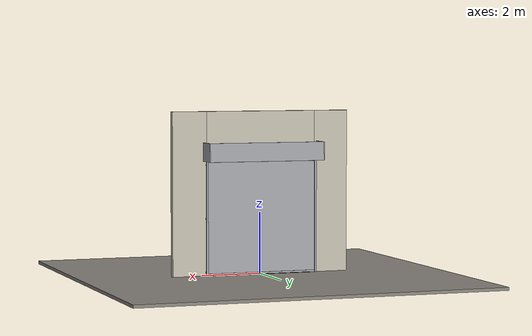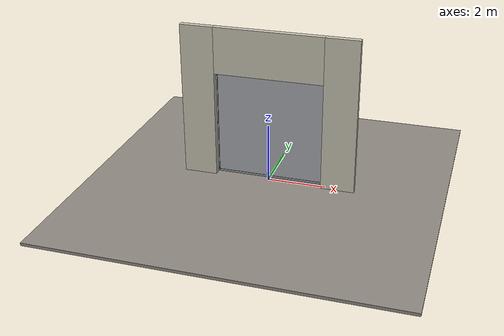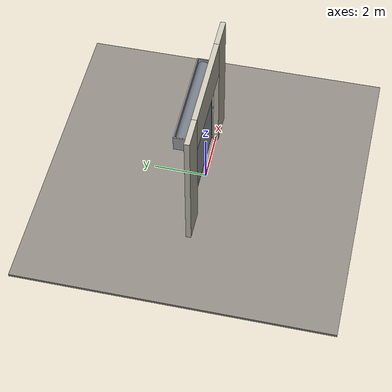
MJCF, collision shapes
<?xml version="1.0" ?>
<mujoco model="db0888_rollup_simple">
  <compiler angle="radian" meshdir="../../hardware" texturedir="../../textures" autolimits="true" inertiafromgeom="false"/>
  <option timestep="0.002" integrator="implicitfast" cone="elliptic" impratio="10" noslip_iterations="3">
    <flag multiccd="enable"/>
  </option>
  <size memory="16M"/>
  <default>
    <geom condim="4" solref="0.005 1" solimp="0.95 0.99 0.001"/>
    <joint solreflimit="0.005 1" solimplimit="0.95 0.99 0.001"/>
    <tendon solreflimit="0.005 1"/>
    <equality solref="0.002 1"/>
  </default>
  <visual>
    <headlight ambient="0.4 0.4 0.4" diffuse="0.7 0.7 0.7" specular="0.2 0.2 0.2"/>
    <quality shadowsize="4096"/>
    <map znear="0.01" zfar="60"/>
  </visual>
  <asset>
    <mesh name="pull_bdc5e965ab" file="pull_bdc5e965ab.obj"/>
    <material name="mat_floor" rgba="0.55 0.53 0.5 1" specular="0.2" shininess="0.15" reflectance="0"/>
    <material name="mat_wall" rgba="0.78 0.76 0.7 1" specular="0.2" shininess="0.1" reflectance="0"/>
    <material name="mat_frame" rgba="0.45 0.48 0.52 1" specular="0.32" shininess="0.6" reflectance="0.08"/>
    <material name="mat_track" rgba="0.65 0.66 0.68 1" specular="0.74" shininess="0.5" reflectance="0.36"/>
    <material name="mat_curtain" rgba="0.65 0.66 0.68 1" specular="0.74" shininess="0.5" reflectance="0.36"/>
    <material name="mat_slat_line" rgba="0.25 0.25 0.25 1" specular="0.2" shininess="0.3" reflectance="0"/>
    <material name="mat_astragal" rgba="0.09 0.09 0.1 1" specular="0.2" shininess="0.1" reflectance="0"/>
    <material name="mat_chain" rgba="0.55 0.56 0.58 1" specular="0.8" shininess="0.55" reflectance="0.4"/>
    <material name="mat_op_black_matte_metal" rgba="0.05 0.05 0.05 1" specular="0.38" shininess="0.3" reflectance="0.12"/>
    <texture name="skybox" type="skybox" builtin="gradient" rgb1="0.6 0.7 0.85" rgb2="0.9 0.92 0.95" width="256" height="256"/>
  </asset>
  <worldbody>
    <light name="sun" pos="1.5 -2.5 4" dir="-0.3 0.5 -0.8" directional="true" diffuse="0.8 0.8 0.8" specular="0.3 0.3 0.3" castshadow="true"/>
    <light name="fill" pos="-1.5 2.5 3" dir="0.3 -0.5 -0.7" directional="true" diffuse="0.35 0.35 0.4" castshadow="false"/>
    <camera name="robot_view" pos="0 -4.103125 3.003875" xyaxes="1 0 0 0 0.26963 0.962964" fovy="52"/>
    <camera name="far_view" pos="0 4.103125 3.003875" xyaxes="-1 0 0 0 -0.26963 0.962964" fovy="52"/>
    <camera name="iso" pos="3.118375 -3.446625 3.660375" xyaxes="0.741536 0.670913 0 -0.242917 0.268487 0.932151" fovy="46"/>
    <camera name="detail_handle" pos="0.25 -0.9665 0.51" xyaxes="0.975133 0.221621 0 -0.065674 0.288965 0.955084" fovy="38"/>
    <geom name="floor" type="box" size="6 6 0.05" pos="0 0 -0.05" material="mat_floor" group="0" contype="1" conaffinity="1" friction="0.8 0.005 0.0001" density="2400"/>
    <geom name="wall_left" type="box" size="0.5725 0.1 2.655" pos="-2.4275 0 2.655" material="mat_wall" group="0" contype="1" conaffinity="1" friction="0.6 0.005 0.0001" density="800"/>
    <geom name="wall_right" type="box" size="0.5725 0.1 2.655" pos="2.4275 0 2.655" material="mat_wall" group="0" contype="1" conaffinity="1" friction="0.6 0.005 0.0001" density="800"/>
    <geom name="wall_header" type="box" size="1.855 0.1 0.8" pos="0 0 4.51" material="mat_wall" group="0" contype="1" conaffinity="1" friction="0.6 0.005 0.0001" density="800"/>
    <geom name="guide_l" type="box" size="0.03 0.025 1.855" pos="-1.865 0.185 1.855" material="mat_track" group="0" contype="1" conaffinity="1" friction="0.6 0.005 0.0001" density="7850"/>
    <geom name="guide_r" type="box" size="0.03 0.025 1.855" pos="1.865 0.185 1.855" material="mat_track" group="0" contype="1" conaffinity="1" friction="0.6 0.005 0.0001" density="7850"/>
    <geom name="guide_bracket_l_0" type="box" size="0.028 0.034 0.02" pos="-1.865 0.13 0.12" material="mat_track" group="1" contype="0" conaffinity="0" density="7850"/>
    <geom name="guide_bracket_l_1" type="box" size="0.028 0.034 0.02" pos="-1.865 0.13 1.855" material="mat_track" group="1" contype="0" conaffinity="0" density="7850"/>
    <geom name="guide_bracket_l_2" type="box" size="0.028 0.034 0.02" pos="-1.865 0.13 3.59" material="mat_track" group="1" contype="0" conaffinity="0" density="7850"/>
    <geom name="guide_bracket_r_0" type="box" size="0.028 0.034 0.02" pos="1.865 0.13 0.12" material="mat_track" group="1" contype="0" conaffinity="0" density="7850"/>
    <geom name="guide_bracket_r_1" type="box" size="0.028 0.034 0.02" pos="1.865 0.13 1.855" material="mat_track" group="1" contype="0" conaffinity="0" density="7850"/>
    <geom name="guide_bracket_r_2" type="box" size="0.028 0.034 0.02" pos="1.865 0.13 3.59" material="mat_track" group="1" contype="0" conaffinity="0" density="7850"/>
    <geom name="coil_drum" type="cylinder" size="0.25 1.88" pos="0 0.463 4.01" quat="0.707107 0 0.707107 0" material="mat_frame" group="1" contype="0" conaffinity="0" density="300"/>
    <geom name="coil_shaft" type="cylinder" size="0.022 1.96" pos="0 0.463 4.01" quat="0.707107 0 0.707107 0" material="mat_track" group="1" contype="0" conaffinity="0" density="7850"/>
    <geom name="hood_front" type="box" size="1.95 0.02 0.3" pos="0 0.725 4.01" material="mat_track" group="1" contype="0" conaffinity="0" density="7850"/>
    <geom name="hood_end_l" type="box" size="0.02 0.3225 0.3" pos="-1.95 0.4225 4.01" material="mat_track" group="1" contype="0" conaffinity="0" density="7850"/>
    <geom name="hood_end_r" type="box" size="0.02 0.3225 0.3" pos="1.95 0.4225 4.01" material="mat_track" group="1" contype="0" conaffinity="0" density="7850"/>
    <site name="approach_point" pos="0 -2 0" quat="1 0 0 0" size="0.05" rgba="0.2 0.9 0.2 0.5" group="4"/>
    <site name="goal_point" pos="0 2 0" quat="1 0 0 0" size="0.05" rgba="0.2 0.9 0.2 0.5" group="4"/>
    <site name="door_plane_center" pos="0 0 1.855" quat="1 0 0 0" size="0.02" rgba="0.2 0.9 0.2 0.5" group="4"/>
    <body name="curtain" pos="0 0 0">
      <inertial pos="0 0.184778 1.606059" mass="84.624368" quat="0.50006 0.49994 0.49994 -0.50006" diaginertia="93.977869231 113.109844049 207.083999212"/>
      <joint name="curtain_slide" type="slide" axis="0 0 1" limited="true" range="0 3.61" damping="6.231218" frictionloss="132.781049" stiffness="62.089907" springref="12.033333" armature="0.5"/>
      <geom name="curtain_slab" type="box" size="1.83 0.0015 1.83" pos="0 0.185 1.84" material="mat_curtain" group="0" contype="1" conaffinity="1" friction="0.42 0.005 0.0001" density="1"/>
      <geom name="bottom_bar" type="box" size="1.83 0.0165 0.03" pos="0 0.185 0.042" material="mat_track" group="0" contype="1" conaffinity="1" friction="0.6 0.005 0.0001" density="7850"/>
      <geom name="bottom_astragal" type="box" size="1.83 0.0115 0.006" pos="0 0.185 0.006" material="mat_astragal" group="0" contype="1" conaffinity="1" friction="0.6 0.005 0.0001" density="1100"/>
      <geom name="lift_handle_n" type="mesh" mesh="pull_bdc5e965ab" pos="0 0.1835 0.16" quat="0.707107 0.707107 0 0" material="mat_op_black_matte_metal" group="1" contype="0" conaffinity="0" density="3000"/>
      <geom name="lift_handle_col_n" type="box" size="0.1 0.006 0.015" pos="0 0.1335 0.16" material="mat_op_black_matte_metal" group="3" contype="1" conaffinity="1" rgba="0.8 0.3 0.3 0.25" friction="0.6 0.005 0.0001" density="3000"/>
      <site name="lift_handle_grip_n" pos="0 0.1335 0.16" quat="1 0 0 0" size="0.012" rgba="0.2 0.9 0.2 0.5" group="4"/>
    </body>
  </worldbody>
  <sensor>
    <jointpos name="curtain_slide_pos" joint="curtain_slide"/>
    <jointvel name="curtain_slide_vel" joint="curtain_slide"/>
  </sensor>
</mujoco>
